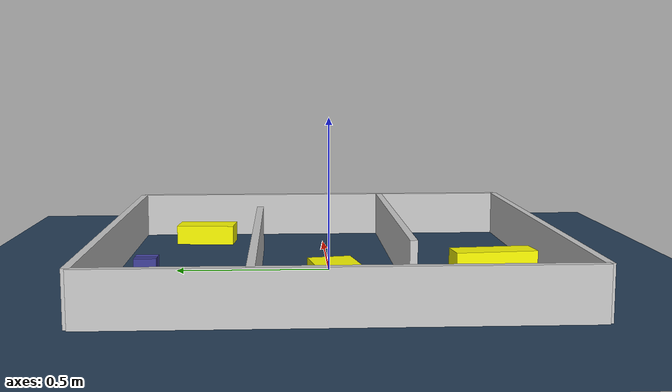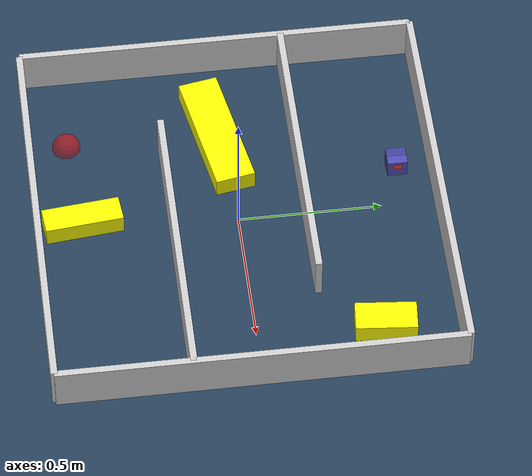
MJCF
<?xml version='1.0' encoding='utf-8'?>
<mujoco model="generated_environment">
  <option timestep="0.002" integrator="implicitfast" cone="elliptic" iterations="100" gravity="0 0 -9.81" />
  <default>
    <geom density="1" />
  </default>
  <asset>
    <texture builtin="gradient" height="3072" rgb1="0.3 0.5 0.7" rgb2="0 0 0" type="skybox" width="512" />
    <texture builtin="checker" height="300" mark="edge" markrgb="0.8 0.8 0.8" name="groundplane" rgb1="0.2 0.3 0.4" rgb2="0.1 0.2 0.3" type="2d" width="300" />
    <material name="groundplane" reflectance="0.2" texrepeat="5 5" texture="groundplane" texuniform="true" />
    <material name="robot" rgba="1.0 1.0 0.0 1.0" />
  </asset>
  <worldbody>
    <light dir="0 0 -1" directional="true" pos="0 0 1.5" />
    <geom condim="4" friction="0.5 0.005 0.001" material="groundplane" name="floor" size="0 0 0.05" type="plane" />
    <body name="walls">
      <geom name="wall_1" condim="4" pos="-0.699000 0.000000 0.080000" rgba="0.800000011920929 0.800000011920929 0.800000011920929 1.0" size="0.011650 0.699000 0.080000" type="box" />
      <geom name="wall_2" condim="4" pos="0.699000 0.000000 0.080000" rgba="0.800000011920929 0.800000011920929 0.800000011920929 1.0" size="0.011650 0.699000 0.080000" type="box" />
      <geom name="wall_3" condim="4" pos="0.000000 -0.699000 0.080000" rgba="0.800000011920929 0.800000011920929 0.800000011920929 1.0" size="0.699000 0.011650 0.080000" type="box" />
      <geom name="wall_4" condim="4" pos="0.000000 0.699000 0.080000" rgba="0.800000011920929 0.800000011920929 0.800000011920929 1.0" size="0.699000 0.011650 0.080000" type="box" />
      <geom name="wall_5" condim="4" pos="0.174750 -0.233000 0.080000" rgba="0.800000011920929 0.800000011920929 0.800000011920929 1.0" size="0.524250 0.011650 0.080000" type="box" />
      <geom name="wall_6" condim="4" pos="-0.174750 0.233000 0.080000" rgba="0.800000011920929 0.800000011920929 0.800000011920929 1.0" size="0.524250 0.011650 0.080000" type="box" />
    </body>
    <body name="car" pos="-0.15500000000000014 0.5750000000000003 0.010000">
      <freejoint name="car_freejoint" />
      <inertial pos="0.000000 0 0.037500" mass="0.350000" diaginertia="0.000266 0.000266 0.000286" />
      <geom name="front_chassis_collision" type="box" pos="0.017500 0 0.037500" size="0.017500 0.035000 0.032500" rgba="0.3 0.3 0.7 1" />
      <geom name="rear_chassis_collision" type="box" pos="-0.017500 0 0.037500" size="0.017500 0.035000 0.032500" rgba="0.25 0.25 0.6 1" />
      <geom name="front_marker" type="box" pos="0.034000 0 0.050500" size="0.002000 0.015000 0.010000" rgba="1.0 0.2 0.2 1" contype="0" conaffinity="0" />
      <body name="rear_support_body" pos="-0.030000 0.000000 0.002500">
        <joint name="rear_caster_joint" type="ball" damping="0.0001" />
        <inertial pos="0 0 0" mass="0.025000" diaginertia="0.000001 0.000001 0.000001" />
        <geom name="rear_support" type="sphere" pos="0 0 0" size="0.002500" friction="0.000000 0.000000 0.000000" rgba="0.7 0.1 0.1 1" />
      </body>
      <body name="front_support_body" pos="0.030000 0.000000 0.002500">
        <joint name="front_caster_joint" type="ball" damping="0.0001" />
        <inertial pos="0 0 0" mass="0.025000" diaginertia="0.000001 0.000001 0.000001" />
        <geom name="front_support" type="sphere" pos="0 0 0" size="0.002500" friction="0.000000 0.000000 0.000000" rgba="0.1 0.7 0.1 1" />
      </body>
      <body name="left_wheel" pos="0.000000 0.037500 0.015000">
        <inertial pos="0 0 0" mass="0.050000" diaginertia="0.000003 0.000006 0.000003" />
        <joint name="left_wheel_joint" type="hinge" axis="0 1 0" />
        <geom name="left_wheel_collision" type="cylinder" size="0.015000 0.000500" euler="90 0 0" rgba="0.1 0.1 0.1 1" />
      </body>
      <body name="right_wheel" pos="0.000000 -0.037500 0.015000">
        <inertial pos="0 0 0" mass="0.050000" diaginertia="0.000003 0.000006 0.000003" />
        <joint name="right_wheel_joint" type="hinge" axis="0 1 0" />
        <geom name="right_wheel_collision" type="cylinder" size="0.015000 0.000500" euler="90 0 0" rgba="0.1 0.1 0.1 1" />
      </body>
    </body>
    <body name="obstacle_0_movable">
      <geom name="obstacle_0_movable" condim="4" pos="-0.3577600886376412 -0.0352370068356459 0.035" euler="0 0 280.4935489720049" friction="0.0 0.005 0.001" rgba="1 1 0 1" size="0.06982775246611833 0.23072594689511028 0.035" type="box" mass="0.1" />
      <joint type="free" />
    </body>
    <body name="obstacle_1_movable">
      <geom name="obstacle_1_movable" condim="4" pos="0.5235549855975878 0.43998044969387795 0.035" euler="0 0 84.83005106059578" friction="0.0 0.005 0.001" rgba="1 1 0 1" size="0.10561090750445117 0.05436837322114399 0.035" type="box" mass="0.1" />
      <joint type="free" />
    </body>
    <body name="obstacle_2_movable">
      <geom name="obstacle_2_movable" condim="4" pos="-0.03372083588896446 -0.539168589358654 0.035" euler="0 0 5.893913095765995" friction="0.0 0.005 0.001" rgba="1 1 0 1" size="0.04752260841765109 0.136328076552328 0.035" type="box" mass="0.1" />
      <joint type="free" />
    </body>
    <site name="goal" type="sphere" pos="-0.3949999999999999 -0.5650000000000001 0.0" size="0.05" rgba="1 0 0 0.5" />
  </worldbody>
  <actuator>
    <velocity name="left_wheel_drive" joint="left_wheel_joint" ctrlrange="-25.000000 25.000000" kv="0.750000" forcerange="-0.300000 0.300000" />
    <velocity name="right_wheel_drive" joint="right_wheel_joint" ctrlrange="-25.000000 25.000000" kv="0.750000" forcerange="-0.300000 0.300000" />
  </actuator>
</mujoco>
